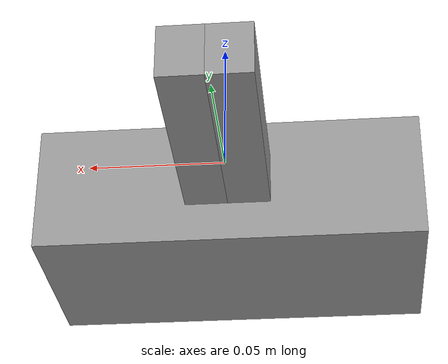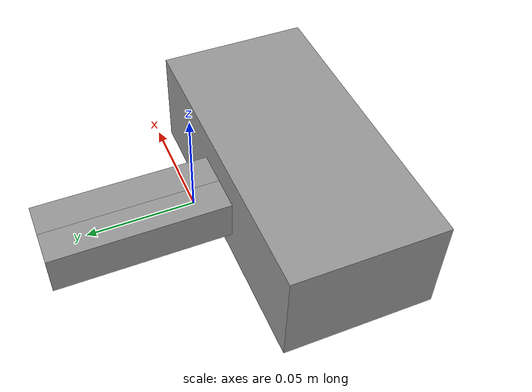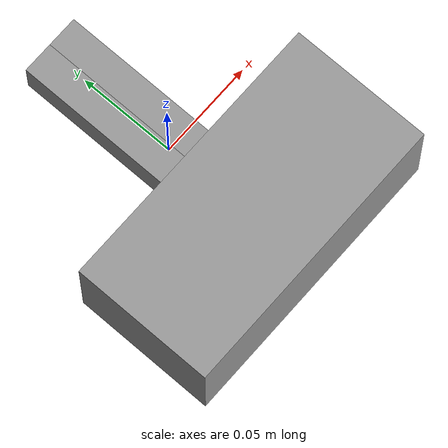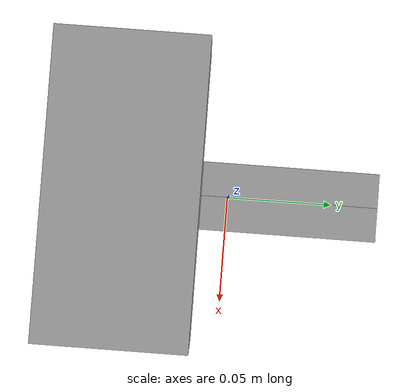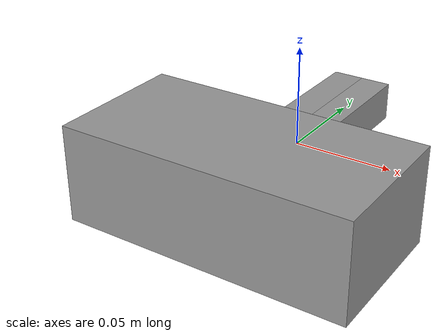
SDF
<?xml version="1.0"?>
<sdf version="1.8">
  <model name="Schunk_Gripper">
    <link name="gripper_base">
      <pose>0 -0.049133 0 0 0 0</pose>
      <inertial>
        <mass>0.988882</mass>
        <inertia>
          <ixx>0.162992</ixx>
          <ixy>0</ixy>
          <ixz>0</ixz>
          <iyy>0.162992</iyy>
          <iyz>0</iyz>
          <izz>0.164814</izz>
        </inertia>
      </inertial>
      <self_collide>0</self_collide>
      <kinematic>0</kinematic>
      <visual name="visual">
        <geometry>
          <box>
            <size>0.146 0.0725 0.049521</size>
          </box>
        </geometry>
        <material>
          <lighting>1</lighting>
          <script>
            <uri>file://media/materials/scripts/gazebo.material</uri>
            <name>Gazebo/Grey</name>
          </script>
          <ambient>0.3 0.3 0.3 1</ambient>
          <diffuse>0.7 0.7 0.7 1</diffuse>
          <specular>0.01 0.01 0.01 1</specular>
          <emissive>0 0 0 1</emissive>
          <shader type="vertex">
            <normal_map>__default__</normal_map>
          </shader>
        </material>
        <cast_shadows>1</cast_shadows>
        <transparency>0</transparency>
      </visual>
      <collision name="collision">
        <laser_retro>0</laser_retro>
        <max_contacts>10</max_contacts>
        <geometry>
          <box>
            <size>0.146 0.0725 0.05</size>
          </box>
        </geometry>
        <surface>
          <friction>
            <ode>
              <mu>1</mu>
              <mu2>1</mu2>
              <fdir1>0 0 0</fdir1>
              <slip1>0</slip1>
              <slip2>0</slip2>
            </ode>
            <torsional>
              <coefficient>1</coefficient>
              <patch_radius>0</patch_radius>
              <surface_radius>0</surface_radius>
              <use_patch_radius>1</use_patch_radius>
              <ode>
                <slip>0</slip>
              </ode>
            </torsional>
          </friction>
          <bounce>
            <restitution_coefficient>0</restitution_coefficient>
            <threshold>1e+06</threshold>
          </bounce>
          <contact>
            <collide_without_contact>0</collide_without_contact>
            <collide_without_contact_bitmask>1</collide_without_contact_bitmask>
            <collide_bitmask>1</collide_bitmask>
            <ode>
              <soft_cfm>0</soft_cfm>
              <soft_erp>0.2</soft_erp>
              <kp>1e+13</kp>
              <kd>1</kd>
              <max_vel>0.01</max_vel>
              <min_depth>0</min_depth>
            </ode>
            <bullet>
              <split_impulse>1</split_impulse>
              <split_impulse_penetration_threshold>-0.01</split_impulse_penetration_threshold>
              <soft_cfm>0</soft_cfm>
              <soft_erp>0.2</soft_erp>
              <kp>1e+13</kp>
              <kd>1</kd>
            </bullet>
          </contact>
        </surface>
      </collision>
    </link>

    <frame name="body_frame">
      <pose relative_to="gripper_base"/>
    </frame>

    <link name="left_finger">
      <pose>-0.008 0.029 0 0 0 0</pose>
      <inertial>
        <mass>0.05</mass>
        <inertia>
          <ixx>0.16</ixx>
          <ixy>0</ixy>
          <ixz>0</ixz>
          <iyy>0.16</iyy>
          <iyz>0</iyz>
          <izz>0.16</izz>
        </inertia>
      </inertial>
      <self_collide>0</self_collide>
      <kinematic>0</kinematic>
      <visual name="visual">
        <geometry>
          <box>
            <size>0.016 0.083 0.02</size>
          </box>
        </geometry>
        <material>
          <lighting>1</lighting>
          <script>
            <uri>file://media/materials/scripts/gazebo.material</uri>
            <name>Gazebo/Grey</name>
          </script>
          <ambient>0.3 0.3 0.3 1</ambient>
          <diffuse>0.7 0.7 0.7 1</diffuse>
          <specular>0.01 0.01 0.01 1</specular>
          <emissive>0 0 0 1</emissive>
          <shader type="vertex">
            <normal_map>__default__</normal_map>
          </shader>
        </material>
        <cast_shadows>1</cast_shadows>
        <transparency>0</transparency>
      </visual>

      <!-- A sequence of spaced spheres the *width* of the finger from the tip
      towards the base. -->
      <collision name="collision_0">
        <pose>0 -0.0209 0 0 0 0</pose>
        <geometry>
          <sphere>
            <radius>0.008</radius>
          </sphere>
        </geometry>
        <drake:proximity_properties>
          <drake:compliant_hydroelastic/>
          <drake:mesh_resolution_hint>0.1</drake:mesh_resolution_hint>
          <drake:hydroelastic_modulus>5e7</drake:hydroelastic_modulus>
          <drake:hunt_crossley_dissipation>1.25</drake:hunt_crossley_dissipation>
          <drake:mu_static>0.4</drake:mu_static>
          <drake:mu_dynamic>0.4</drake:mu_dynamic>
        </drake:proximity_properties>
      </collision>

      <collision name="collision_1">
        <pose>0 -0.0049 0 0 0 0</pose>
        <geometry>
          <sphere>
            <radius>0.008</radius>
          </sphere>
        </geometry>
        <drake:proximity_properties>
          <drake:compliant_hydroelastic/>
          <drake:mesh_resolution_hint>0.1</drake:mesh_resolution_hint>
          <drake:hydroelastic_modulus>5e7</drake:hydroelastic_modulus>
          <drake:hunt_crossley_dissipation>1.25</drake:hunt_crossley_dissipation>
          <drake:mu_static>0.4</drake:mu_static>
          <drake:mu_dynamic>0.4</drake:mu_dynamic>
        </drake:proximity_properties>
      </collision>

      <collision name="collision_2">
        <pose>0 0.0112 0 0 0 0</pose>
        <geometry>
          <sphere>
            <radius>0.008</radius>
          </sphere>
        </geometry>
        <drake:proximity_properties>
          <drake:compliant_hydroelastic/>
          <drake:mesh_resolution_hint>0.1</drake:mesh_resolution_hint>
          <drake:hydroelastic_modulus>5e7</drake:hydroelastic_modulus>
          <drake:hunt_crossley_dissipation>1.25</drake:hunt_crossley_dissipation>
          <drake:mu_static>0.4</drake:mu_static>
          <drake:mu_dynamic>0.4</drake:mu_dynamic>
        </drake:proximity_properties>
      </collision>

      <collision name="collision_3">
        <pose>0 0.0271 0 0 0 0</pose>
        <geometry>
          <sphere>
            <radius>0.008</radius>
          </sphere>
        </geometry>
        <drake:proximity_properties>
          <drake:compliant_hydroelastic/>
          <drake:mesh_resolution_hint>0.1</drake:mesh_resolution_hint>
          <drake:hydroelastic_modulus>5e7</drake:hydroelastic_modulus>
          <drake:hunt_crossley_dissipation>1.25</drake:hunt_crossley_dissipation>
          <drake:mu_static>0.4</drake:mu_static>
          <drake:mu_dynamic>0.4</drake:mu_dynamic>
        </drake:proximity_properties>
      </collision>

      <!-- Two more spheres that form a triangle with the tip-most sphere
           above. -->
      <collision name="collision_4">
        <pose>0.0040 0.0375 0.0060 0 0 0</pose>
        <geometry>
          <sphere>
            <radius>0.004</radius>
          </sphere>
        </geometry>
        <drake:proximity_properties>
          <drake:compliant_hydroelastic/>
          <drake:mesh_resolution_hint>0.1</drake:mesh_resolution_hint>
          <drake:hydroelastic_modulus>5e7</drake:hydroelastic_modulus>
          <drake:hunt_crossley_dissipation>1.25</drake:hunt_crossley_dissipation>
          <drake:mu_static>0.4</drake:mu_static>
          <drake:mu_dynamic>0.4</drake:mu_dynamic>
        </drake:proximity_properties>
      </collision>

      <collision name="collision_5">
        <pose>0.0040 0.0375 -0.0060 0 0 0</pose>
        <geometry>
          <sphere>
            <radius>0.004</radius>
          </sphere>
        </geometry>
        <drake:proximity_properties>
          <drake:compliant_hydroelastic/>
          <drake:mesh_resolution_hint>0.1</drake:mesh_resolution_hint>
          <drake:hydroelastic_modulus>5e7</drake:hydroelastic_modulus>
          <drake:hunt_crossley_dissipation>1.25</drake:hunt_crossley_dissipation>
          <drake:mu_static>0.4</drake:mu_static>
          <drake:mu_dynamic>0.4</drake:mu_dynamic>
        </drake:proximity_properties>
      </collision>
    </link>

    <link name="right_finger">
      <pose>0.008 0.029 0 0 0 0</pose>
      <inertial>
        <mass>0.05</mass>
        <inertia>
          <ixx>0.16</ixx>
          <ixy>0</ixy>
          <ixz>0</ixz>
          <iyy>0.16</iyy>
          <iyz>0</iyz>
          <izz>0.16</izz>
        </inertia>
      </inertial>
      <self_collide>0</self_collide>
      <kinematic>0</kinematic>
      <visual name="visual">
        <geometry>
          <box>
            <size>0.016 0.083 0.02</size>
          </box>
        </geometry>
        <material>
          <lighting>1</lighting>
          <script>
            <uri>file://media/materials/scripts/gazebo.material</uri>
            <name>Gazebo/Grey</name>
          </script>
          <ambient>0.3 0.3 0.3 1</ambient>
          <diffuse>0.7 0.7 0.7 1</diffuse>
          <specular>0.01 0.01 0.01 1</specular>
          <emissive>0 0 0 1</emissive>
          <shader type="vertex">
            <normal_map>__default__</normal_map>
          </shader>
        </material>
        <cast_shadows>1</cast_shadows>
        <transparency>0</transparency>
      </visual>

      <!-- A sequence of spaced spheres the *width* of the finger from the tip
      towards the base. -->
      <collision name="collision_0">
        <pose>0 -0.0209 0 0 0 0</pose>
        <geometry>
          <sphere>
            <radius>0.008</radius>
          </sphere>
        </geometry>
        <drake:proximity_properties>
          <drake:compliant_hydroelastic/>
          <drake:mesh_resolution_hint>0.1</drake:mesh_resolution_hint>
          <drake:hydroelastic_modulus>5e7</drake:hydroelastic_modulus>
          <drake:hunt_crossley_dissipation>1.25</drake:hunt_crossley_dissipation>
          <drake:mu_static>0.4</drake:mu_static>
          <drake:mu_dynamic>0.4</drake:mu_dynamic>
        </drake:proximity_properties>
      </collision>

      <collision name="collision_1">
        <pose>0 -0.0049 0 0 0 0</pose>
        <geometry>
          <sphere>
            <radius>0.008</radius>
          </sphere>
        </geometry>
        <drake:proximity_properties>
          <drake:compliant_hydroelastic/>
          <drake:mesh_resolution_hint>0.1</drake:mesh_resolution_hint>
          <drake:hydroelastic_modulus>5e7</drake:hydroelastic_modulus>
          <drake:hunt_crossley_dissipation>1.25</drake:hunt_crossley_dissipation>
          <drake:mu_static>0.4</drake:mu_static>
          <drake:mu_dynamic>0.4</drake:mu_dynamic>
        </drake:proximity_properties>
      </collision>

      <collision name="collision_2">
        <pose>0 0.0112 0 0 0 0</pose>
        <geometry>
          <sphere>
            <radius>0.008</radius>
          </sphere>
        </geometry>
        <drake:proximity_properties>
          <drake:compliant_hydroelastic/>
          <drake:mesh_resolution_hint>0.1</drake:mesh_resolution_hint>
          <drake:hydroelastic_modulus>5e7</drake:hydroelastic_modulus>
          <drake:hunt_crossley_dissipation>1.25</drake:hunt_crossley_dissipation>
          <drake:mu_static>0.4</drake:mu_static>
          <drake:mu_dynamic>0.4</drake:mu_dynamic>
        </drake:proximity_properties>
      </collision>

      <collision name="collision_3">
        <pose>0 0.0271 0 0 0 0</pose>
        <geometry>
          <sphere>
            <radius>0.008</radius>
          </sphere>
        </geometry>
        <drake:proximity_properties>
          <drake:compliant_hydroelastic/>
          <drake:mesh_resolution_hint>0.1</drake:mesh_resolution_hint>
          <drake:hydroelastic_modulus>5e7</drake:hydroelastic_modulus>
          <drake:hunt_crossley_dissipation>1.25</drake:hunt_crossley_dissipation>
          <drake:mu_static>0.4</drake:mu_static>
          <drake:mu_dynamic>0.4</drake:mu_dynamic>
        </drake:proximity_properties>
      </collision>

      <!-- Two more spheres that form a triangle with the tip-most sphere
           above. -->
      <collision name="collision_4">
        <pose>-0.004 0.0375 0.0060 0 0 0</pose>
        <geometry>
          <sphere>
            <radius>0.004</radius>
          </sphere>
        </geometry>
        <drake:proximity_properties>
          <drake:compliant_hydroelastic/>
          <drake:mesh_resolution_hint>0.1</drake:mesh_resolution_hint>
          <drake:hydroelastic_modulus>5e7</drake:hydroelastic_modulus>
          <drake:hunt_crossley_dissipation>1.25</drake:hunt_crossley_dissipation>
          <drake:mu_static>0.4</drake:mu_static>
          <drake:mu_dynamic>0.4</drake:mu_dynamic>
        </drake:proximity_properties>
      </collision>

      <collision name="collision_5">
        <pose>-0.004 0.0375 -0.0060 0 0 0</pose>
        <geometry>
          <sphere>
            <radius>0.004</radius>
          </sphere>
        </geometry>
        <drake:proximity_properties>
          <drake:compliant_hydroelastic/>
          <drake:mesh_resolution_hint>0.1</drake:mesh_resolution_hint>
          <drake:hydroelastic_modulus>5e7</drake:hydroelastic_modulus>
          <drake:hunt_crossley_dissipation>1.25</drake:hunt_crossley_dissipation>
          <drake:mu_static>0.4</drake:mu_static>
          <drake:mu_dynamic>0.4</drake:mu_dynamic>
        </drake:proximity_properties>
      </collision>
    </link>

    <joint name="left_finger_sliding_joint" type="prismatic">
      <parent>gripper_base</parent>
      <child>left_finger</child>
      <axis>
        <xyz>1 0 0</xyz>
        <!-- Drake attaches an actuator to all and only joints with a nonzero
             effort limit. -->
        <limit>
          <lower>-0.055</lower>
          <upper>0</upper>
          <effort>80</effort>
          <stiffness>15000</stiffness>
          <dissipation>50</dissipation>
        </limit>
        <dynamics>
          <spring_reference>0</spring_reference>
          <spring_stiffness>0</spring_stiffness>
          <damping>0</damping>
          <friction>0</friction>
        </dynamics>
      </axis>
      <physics>
        <ode>
          <limit>
            <cfm>0</cfm>
            <erp>0.2</erp>
          </limit>
          <suspension>
            <cfm>0</cfm>
            <erp>0.2</erp>
          </suspension>
        </ode>
      </physics>
    </joint>

    <joint name="right_finger_sliding_joint" type="prismatic">
      <parent>gripper_base</parent>
      <child>right_finger</child>
      <axis>
        <xyz>1 0 0</xyz>
        <!-- Drake attaches an actuator to all and only joints with a nonzero
             effort limit. -->
        <limit>
          <lower>0</lower>
          <upper>0.055</upper>
          <effort>80</effort>
          <stiffness>15000</stiffness>
          <dissipation>50</dissipation>
        </limit>
        <dynamics>
          <spring_reference>0</spring_reference>
          <spring_stiffness>0</spring_stiffness>
          <damping>0</damping>
          <friction>0</friction>
        </dynamics>
      </axis>
      <physics>
        <ode>
          <limit>
            <cfm>0</cfm>
            <erp>0.2</erp>
          </limit>
          <suspension>
            <cfm>0</cfm>
            <erp>0.2</erp>
          </suspension>
        </ode>
      </physics>
    </joint>
    <static>0</static>
    <allow_auto_disable>1</allow_auto_disable>
  </model>
</sdf>
